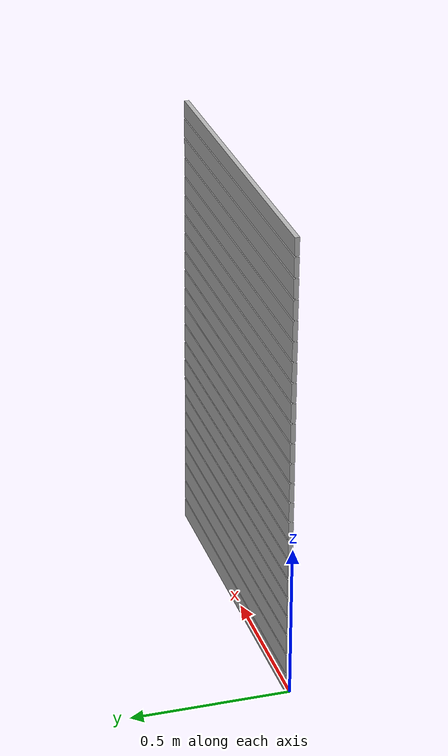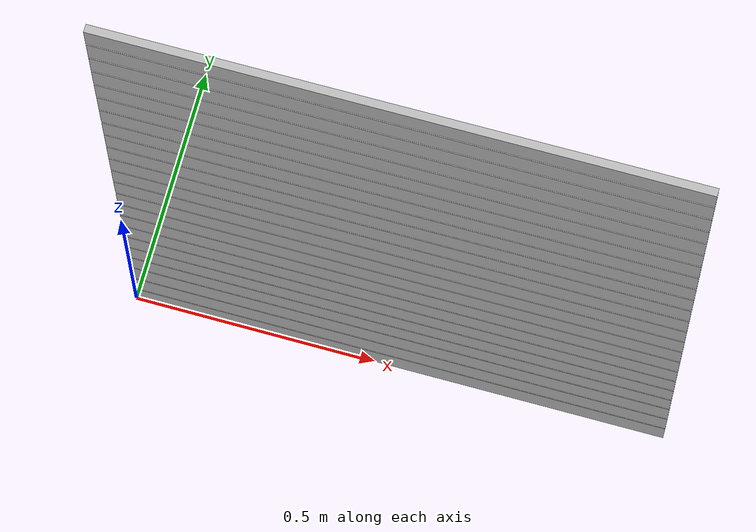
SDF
<?xml version="1.0" ?>
<sdf version="1.5">
  <model name="aluminium_roller_door">
    <static>true</static>
    <link name="aluminium_roller_door_link">
        <collision name="aluminium_roller_door_collision">
         <geometry>
            <mesh>
                <uri>model://aluminium_roller_door/meshes/model.dae</uri>
                <scale>0.5 0.5 0.5</scale>
            </mesh>
        </geometry>
      </collision>

      <visual name="aluminium_roller_door_mesh">
        <cast_shadows>true</cast_shadows>
        <geometry>
            <mesh>
                <uri>model://aluminium_roller_door/meshes/model.dae</uri>
                <scale>0.5 0.5 0.5</scale>
            </mesh>
        </geometry>
      </visual>
    </link>
  </model>
</sdf>
